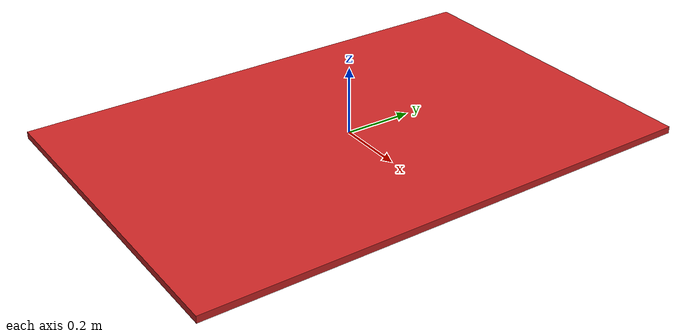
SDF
<?xml version='1.0'?>
<sdf version='1.6'>
  <model name='surface_red_long'>
    <static>true</static>
    <link name='link'>
      <pose frame=''>0 0 0 0 0 0</pose>
      <visual name='visual'>
        <geometry>
          <box>
            <size>1 1.5 0.02</size>
          </box>
        </geometry>
        <material>
          <script>
            <uri>model://surface_red_long/materials/scripts</uri>
            <uri>model://surface_red_long/materials/textures</uri>
            <name>redTexture</name>
          </script>
        </material>
      </visual>
      <collision name='collision'>
        <laser_retro>0</laser_retro>
        <max_contacts>10</max_contacts>
        <pose frame=''>0 0 0 0 -0 0</pose>
        <geometry>
          <box>
            <size>1 1.5 0.02</size>
          </box>
        </geometry>
      </collision>
    </link>
    <allow_auto_disable>1</allow_auto_disable>

  </model>
</sdf>
